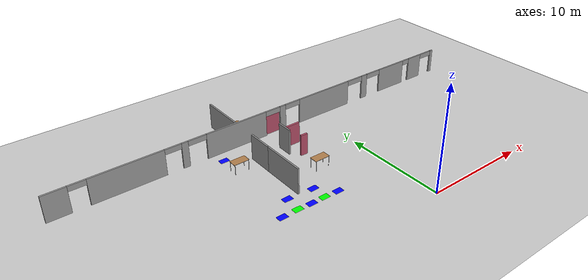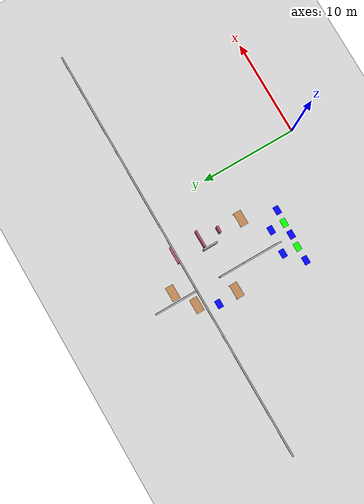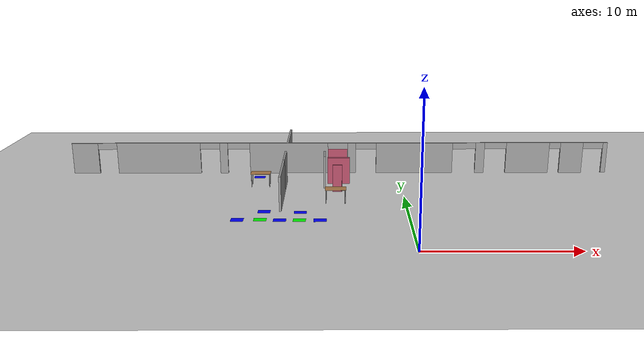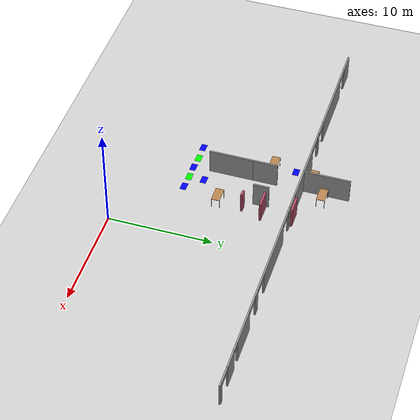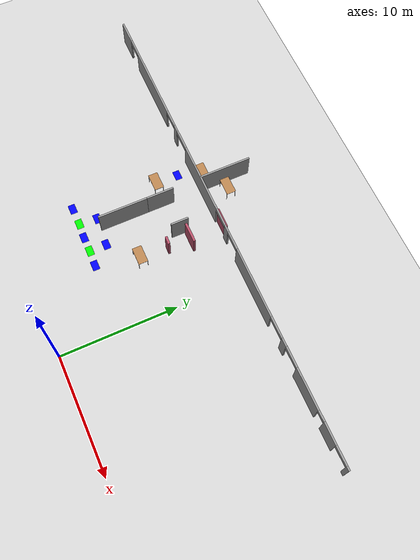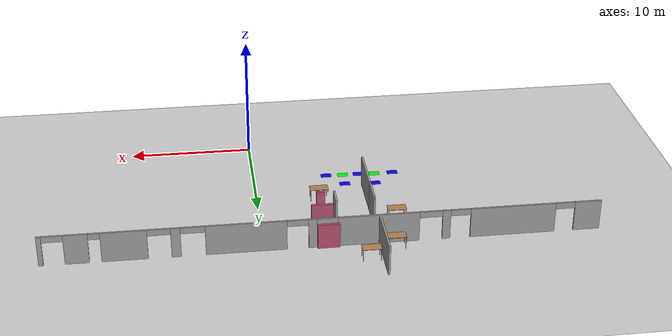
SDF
<sdf version="1.6">
 <world name="default">
  <model name="ground_plane">
   <pose>0 0 0.001 0 -0 0</pose>
   <static>1</static>
   <link name="link">
    <collision name="collision">
     <geometry><plane><normal>0 0 1</normal><size>100 100</size></plane></geometry>
     <surface><friction><ode><mu>100</mu><mu2>50</mu2></ode></friction></surface>
    </collision>
    <visual name="visual">
     <cast_shadows>0</cast_shadows>
     <geometry><plane><normal>0 0 1</normal><size>100 100</size></plane></geometry>
     <material>
      <script><uri>file://media/materials/scripts/gazebo.material</uri><name>Gazebo/Grey</name></script>
     </material>
    </visual>
   </link>
  </model>
  <model name="table_1">
   <static>1</static>
   <link name="link">
    <collision name="surface">
     <pose>0 0 1 0 -0 0</pose>
     <geometry><box><size>1.5 0.8 0.03</size></box></geometry>
     <surface><friction><ode><mu>0.6</mu><mu2>0.6</mu2></ode></friction></surface>
    </collision>
    <visual name="visual1">
     <pose>0 0 1 0 -0 0</pose>
     <geometry><box><size>1.5 0.8 0.03</size></box></geometry>
     <material>
      <script><uri>file://media/materials/scripts/gazebo.material</uri><name>Gazebo/Wood</name></script>
     </material>
    </visual>
    <collision name="front_left_leg">
     <pose>0.68 0.38 0.5 0 -0 0</pose>
     <geometry><cylinder><radius>0.02</radius><length>1</length></cylinder></geometry>
    </collision>
    <visual name="front_left_leg">
     <pose>0.68 0.38 0.5 0 -0 0</pose>
     <geometry><cylinder><radius>0.02</radius><length>1</length></cylinder></geometry>
     <material>
      <script><uri>file://media/materials/scripts/gazebo.material</uri><name>Gazebo/Grey</name></script>
     </material>
    </visual>
    <collision name="front_right_leg">
     <pose>0.68 -0.38 0.5 0 -0 0</pose>
     <geometry><cylinder><radius>0.02</radius><length>1</length></cylinder></geometry>
    </collision>
    <visual name="front_right_leg">
     <pose>0.68 -0.38 0.5 0 -0 0</pose>
     <geometry><cylinder><radius>0.02</radius><length>1</length></cylinder></geometry>
     <material>
      <script><uri>file://media/materials/scripts/gazebo.material</uri><name>Gazebo/Grey</name></script>
     </material>
    </visual>
    <collision name="back_right_leg">
     <pose>-0.68 -0.38 0.5 0 -0 0</pose>
     <geometry><cylinder><radius>0.02</radius><length>1</length></cylinder></geometry>
    </collision>
    <visual name="back_right_leg">
     <pose>-0.68 -0.38 0.5 0 -0 0</pose>
     <geometry><cylinder><radius>0.02</radius><length>1</length></cylinder></geometry>
     <material>
      <script><uri>file://media/materials/scripts/gazebo.material</uri><name>Gazebo/Grey</name></script>
     </material>
    </visual>
    <collision name="back_left_leg">
     <pose>-0.68 0.38 0.5 0 -0 0</pose>
     <geometry><cylinder><radius>0.02</radius><length>1</length></cylinder></geometry>
    </collision>
    <visual name="back_left_leg">
     <pose>-0.68 0.38 0.5 0 -0 0</pose>
     <geometry><cylinder><radius>0.02</radius><length>1</length></cylinder></geometry>
     <material>
      <script><uri>file://media/materials/scripts/gazebo.material</uri><name>Gazebo/Grey</name></script>
     </material>
    </visual>
   </link>
   <pose>-10.0366 16.6825 0.001 0 -0 0</pose>
  </model>
  <model name="table_3">
   <static>1</static>
   <link name="link">
    <collision name="surface">
     <pose>0 0 1 0 -0 0</pose>
     <geometry><box><size>1.5 0.8 0.03</size></box></geometry>
     <surface><friction><ode><mu>0.6</mu><mu2>0.6</mu2></ode></friction></surface>
    </collision>
    <visual name="visual1">
     <pose>0 0 1 0 -0 0</pose>
     <geometry><box><size>1.5 0.8 0.03</size></box></geometry>
     <material>
      <script><uri>file://media/materials/scripts/gazebo.material</uri><name>Gazebo/Wood</name></script>
     </material>
    </visual>
    <collision name="front_left_leg">
     <pose>0.68 0.38 0.5 0 -0 0</pose>
     <geometry><cylinder><radius>0.02</radius><length>1</length></cylinder></geometry>
    </collision>
    <visual name="front_left_leg">
     <pose>0.68 0.38 0.5 0 -0 0</pose>
     <geometry><cylinder><radius>0.02</radius><length>1</length></cylinder></geometry>
     <material>
      <script><uri>file://media/materials/scripts/gazebo.material</uri><name>Gazebo/Grey</name></script>
     </material>
    </visual>
    <collision name="front_right_leg">
     <pose>0.68 -0.38 0.5 0 -0 0</pose>
     <geometry><cylinder><radius>0.02</radius><length>1</length></cylinder></geometry>
    </collision>
    <visual name="front_right_leg">
     <pose>0.68 -0.38 0.5 0 -0 0</pose>
     <geometry><cylinder><radius>0.02</radius><length>1</length></cylinder></geometry>
     <material>
      <script><uri>file://media/materials/scripts/gazebo.material</uri><name>Gazebo/Grey</name></script>
     </material>
    </visual>
    <collision name="back_right_leg">
     <pose>-0.68 -0.38 0.5 0 -0 0</pose>
     <geometry><cylinder><radius>0.02</radius><length>1</length></cylinder></geometry>
    </collision>
    <visual name="back_right_leg">
     <pose>-0.68 -0.38 0.5 0 -0 0</pose>
     <geometry><cylinder><radius>0.02</radius><length>1</length></cylinder></geometry>
     <material>
      <script><uri>file://media/materials/scripts/gazebo.material</uri><name>Gazebo/Grey</name></script>
     </material>
    </visual>
    <collision name="back_left_leg">
     <pose>-0.68 0.38 0.5 0 -0 0</pose>
     <geometry><cylinder><radius>0.02</radius><length>1</length></cylinder></geometry>
    </collision>
    <visual name="back_left_leg">
     <pose>-0.68 0.38 0.5 0 -0 0</pose>
     <geometry><cylinder><radius>0.02</radius><length>1</length></cylinder></geometry>
     <material>
      <script><uri>file://media/materials/scripts/gazebo.material</uri><name>Gazebo/Grey</name></script>
     </material>
    </visual>
   </link>
   <pose>-10.736 12.6995 0.001 0 -0 0</pose>
  </model>
  <model name="table_4">
   <static>1</static>
   <link name="link">
    <collision name="surface">
     <pose>0 0 1 0 -0 0</pose>
     <geometry><box><size>1.5 0.8 0.03</size></box></geometry>
     <surface><friction><ode><mu>0.6</mu><mu2>0.6</mu2></ode></friction></surface>
    </collision>
    <visual name="visual1">
     <pose>0 0 1 0 -0 0</pose>
     <geometry><box><size>1.5 0.8 0.03</size></box></geometry>
     <material>
      <script><uri>file://media/materials/scripts/gazebo.material</uri><name>Gazebo/Wood</name></script>
     </material>
    </visual>
    <collision name="front_left_leg">
     <pose>0.68 0.38 0.5 0 -0 0</pose>
     <geometry><cylinder><radius>0.02</radius><length>1</length></cylinder></geometry>
    </collision>
    <visual name="front_left_leg">
     <pose>0.68 0.38 0.5 0 -0 0</pose>
     <geometry><cylinder><radius>0.02</radius><length>1</length></cylinder></geometry>
     <material>
      <script><uri>file://media/materials/scripts/gazebo.material</uri><name>Gazebo/Grey</name></script>
     </material>
    </visual>
    <collision name="front_right_leg">
     <pose>0.68 -0.38 0.5 0 -0 0</pose>
     <geometry><cylinder><radius>0.02</radius><length>1</length></cylinder></geometry>
    </collision>
    <visual name="front_right_leg">
     <pose>0.68 -0.38 0.5 0 -0 0</pose>
     <geometry><cylinder><radius>0.02</radius><length>1</length></cylinder></geometry>
     <material>
      <script><uri>file://media/materials/scripts/gazebo.material</uri><name>Gazebo/Grey</name></script>
     </material>
    </visual>
    <collision name="back_right_leg">
     <pose>-0.68 -0.38 0.5 0 -0 0</pose>
     <geometry><cylinder><radius>0.02</radius><length>1</length></cylinder></geometry>
    </collision>
    <visual name="back_right_leg">
     <pose>-0.68 -0.38 0.5 0 -0 0</pose>
     <geometry><cylinder><radius>0.02</radius><length>1</length></cylinder></geometry>
     <material>
      <script><uri>file://media/materials/scripts/gazebo.material</uri><name>Gazebo/Grey</name></script>
     </material>
    </visual>
    <collision name="back_left_leg">
     <pose>-0.68 0.38 0.5 0 -0 0</pose>
     <geometry><cylinder><radius>0.02</radius><length>1</length></cylinder></geometry>
    </collision>
    <visual name="back_left_leg">
     <pose>-0.68 0.38 0.5 0 -0 0</pose>
     <geometry><cylinder><radius>0.02</radius><length>1</length></cylinder></geometry>
     <material>
      <script><uri>file://media/materials/scripts/gazebo.material</uri><name>Gazebo/Grey</name></script>
     </material>
    </visual>
   </link>
   <pose>-5.01771 8.89432 0.001 0 -0 0</pose>
  </model>
  <model name="table_5">
   <static>1</static>
   <link name="link">
    <collision name="surface">
     <pose>0 0 1 0 -0 0</pose>
     <geometry><box><size>1.5 0.8 0.03</size></box></geometry>
     <surface><friction><ode><mu>0.6</mu><mu2>0.6</mu2></ode></friction></surface>
    </collision>
    <visual name="visual1">
     <pose>0 0 1 0 -0 0</pose>
     <geometry><box><size>1.5 0.8 0.03</size></box></geometry>
     <material>
      <script><uri>file://media/materials/scripts/gazebo.material</uri><name>Gazebo/Wood</name></script>
     </material>
    </visual>
    <collision name="front_left_leg">
     <pose>0.68 0.38 0.5 0 -0 0</pose>
     <geometry><cylinder><radius>0.02</radius><length>1</length></cylinder></geometry>
    </collision>
    <visual name="front_left_leg">
     <pose>0.68 0.38 0.5 0 -0 0</pose>
     <geometry><cylinder><radius>0.02</radius><length>1</length></cylinder></geometry>
     <material>
      <script><uri>file://media/materials/scripts/gazebo.material</uri><name>Gazebo/Grey</name></script>
     </material>
    </visual>
    <collision name="front_right_leg">
     <pose>0.68 -0.38 0.5 0 -0 0</pose>
     <geometry><cylinder><radius>0.02</radius><length>1</length></cylinder></geometry>
    </collision>
    <visual name="front_right_leg">
     <pose>0.68 -0.38 0.5 0 -0 0</pose>
     <geometry><cylinder><radius>0.02</radius><length>1</length></cylinder></geometry>
     <material>
      <script><uri>file://media/materials/scripts/gazebo.material</uri><name>Gazebo/Grey</name></script>
     </material>
    </visual>
    <collision name="back_right_leg">
     <pose>-0.68 -0.38 0.5 0 -0 0</pose>
     <geometry><cylinder><radius>0.02</radius><length>1</length></cylinder></geometry>
    </collision>
    <visual name="back_right_leg">
     <pose>-0.68 -0.38 0.5 0 -0 0</pose>
     <geometry><cylinder><radius>0.02</radius><length>1</length></cylinder></geometry>
     <material>
      <script><uri>file://media/materials/scripts/gazebo.material</uri><name>Gazebo/Grey</name></script>
     </material>
    </visual>
    <collision name="back_left_leg">
     <pose>-0.68 0.38 0.5 0 -0 0</pose>
     <geometry><cylinder><radius>0.02</radius><length>1</length></cylinder></geometry>
    </collision>
    <visual name="back_left_leg">
     <pose>-0.68 0.38 0.5 0 -0 0</pose>
     <geometry><cylinder><radius>0.02</radius><length>1</length></cylinder></geometry>
     <material>
      <script><uri>file://media/materials/scripts/gazebo.material</uri><name>Gazebo/Grey</name></script>
     </material>
    </visual>
   </link>
   <pose>-7.90698 18.0796 0.001 0 -0 0</pose>
  </model>
  <model name="doorInside_10">
   <link name="link">
    <pose>0.712274 -0.220649 0.216958 0 -0 0</pose>
    <inertial>
     <mass>0.840612</mass>
     <inertia>
      <ixx>0.178476</ixx>
      <ixy>0</ixy>
      <ixz>0</ixz>
      <iyy>0.140406</iyy>
      <iyz>0</iyz>
      <izz>0.102032</izz>
     </inertia>
     <pose>0 0 0.001 0 -0 0</pose>
    </inertial>
    <visual name="visual">
     <geometry><box><size>0.675678 0.198843 2.05986</size></box></geometry>
     <material>
      <script><name>Gazebo/Grey</name><uri>file://media/materials/scripts/gazebo.material</uri></script>
      <ambient>0.7 0.3 0.4 1</ambient>
      <diffuse>0.7 0.7 0.7 1</diffuse>
      <specular>0.01 0.01 0.01 1</specular>
      <emissive>1 0 0 1</emissive>
      <shader type="vertex"><normal_map>__default__</normal_map></shader>
      <lighting>0</lighting>
     </material>
     <pose>0 0 0.001 0 -0 0</pose>
    </visual>
    <collision name="collision">
     <pose>0 0 0.001 0 -0 0</pose>
     <geometry><box><size>0.675678 0.198843 2.05986</size></box></geometry>
     <surface>
      <friction>
       <ode><mu>1</mu><mu2>1</mu2><fdir1>0 0 0</fdir1><slip1>0</slip1><slip2>0</slip2></ode>
       <torsional>
        <coefficient>1</coefficient>
        <patch_radius>0</patch_radius>
        <surface_radius>0</surface_radius>
        <use_patch_radius>1</use_patch_radius>
        <ode><slip>0</slip></ode>
       </torsional>
      </friction>
      <bounce><restitution_coefficient>0</restitution_coefficient><threshold>1e+06</threshold></bounce>
      <contact>
       <collide_without_contact>0</collide_without_contact>
       <collide_without_contact_bitmask>1</collide_without_contact_bitmask>
       <collide_bitmask>1</collide_bitmask>
       <ode>
        <soft_cfm>0</soft_cfm>
        <soft_erp>0.2</soft_erp>
        <kp>1e+13</kp>
        <kd>1</kd>
        <max_vel>0.01</max_vel>
        <min_depth>0</min_depth>
       </ode>
       <bullet>
        <split_impulse>1</split_impulse>
        <split_impulse_penetration_threshold>-0.01</split_impulse_penetration_threshold>
        <soft_cfm>0</soft_cfm>
        <soft_erp>0.2</soft_erp>
        <kp>1e+13</kp>
        <kd>1</kd>
       </bullet>
      </contact>
     </surface>
    </collision>
   </link>
   <static>0</static>
   <pose>-5.58873 11.5494 0.811972 0 0 -0.036385</pose>
  </model>
  <model name="corridor_16">
   <link name="link">
    <pose>0 0 0.001 0 -0 0</pose>
    <inertial>
     <mass>0.0352517</mass>
     <inertia>
      <ixx>0.00099707</ixx>
      <ixy>0</ixy>
      <ixz>0</ixz>
      <iyy>0.00220147</iyy>
      <iyz>0</iyz>
      <izz>0.0031692</izz>
     </inertia>
     <pose>0 0 0.001 0 -0 0</pose>
    </inertial>
    <visual name="visual">
     <geometry><box><size>0.862743 0.578289 1e-06</size></box></geometry>
     <material>
      <script><name>Gazebo/Grey</name><uri>file://media/materials/scripts/gazebo.material</uri></script>
      <ambient>0 1 0 1</ambient>
      <diffuse>0 1 0 1</diffuse>
      <specular>0 1 0 1</specular>
      <emissive>0 1 0 1</emissive>
      <shader type="vertex"><normal_map>__default__</normal_map></shader>
     </material>
     <pose>0 0 0.001 0 -0 0</pose>
    </visual>
    <collision name="collision">
     <pose>0 0 0.001 0 -0 0</pose>
     <geometry><box><size>0.862743 0.578289 0.000477</size></box></geometry>
     <surface>
      <friction>
       <ode><mu>1</mu><mu2>1</mu2><fdir1>0 0 0</fdir1><slip1>0</slip1><slip2>0</slip2></ode>
       <torsional>
        <coefficient>1</coefficient>
        <patch_radius>0</patch_radius>
        <surface_radius>0</surface_radius>
        <use_patch_radius>1</use_patch_radius>
        <ode><slip>0</slip></ode>
       </torsional>
      </friction>
      <bounce><restitution_coefficient>0</restitution_coefficient><threshold>1e+06</threshold></bounce>
      <contact>
       <collide_without_contact>0</collide_without_contact>
       <collide_without_contact_bitmask>1</collide_without_contact_bitmask>
       <collide_bitmask>1</collide_bitmask>
       <ode>
        <soft_cfm>0</soft_cfm>
        <soft_erp>0.2</soft_erp>
        <kp>1e+13</kp>
        <kd>1</kd>
        <max_vel>0.01</max_vel>
        <min_depth>0</min_depth>
       </ode>
       <bullet>
        <split_impulse>1</split_impulse>
        <split_impulse_penetration_threshold>-0.01</split_impulse_penetration_threshold>
        <soft_cfm>0</soft_cfm>
        <soft_erp>0.2</soft_erp>
        <kp>1e+13</kp>
        <kd>1</kd>
       </bullet>
      </contact>
     </surface>
    </collision>
   </link>
   <static>1</static>
   <pose>-7.44314 5.32852 0 0 -0 0</pose>
  </model>
  <model name="intersection_26">
   <link name="link">
    <pose>0 0 0.001 0 -0 0</pose>
    <inertial>
     <mass>0.0352517</mass>
     <inertia>
      <ixx>0.000997067</ixx>
      <ixy>0</ixy>
      <ixz>0</ixz>
      <iyy>0.00220147</iyy>
      <iyz>0</iyz>
      <izz>0.0031692</izz>
     </inertia>
     <pose>0 0 0.001 0 -0 0</pose>
    </inertial>
    <visual name="visual">
     <geometry><box><size>0.862743 0.578289 1e-06</size></box></geometry>
     <material>
      <script><name>Gazebo/Grey</name><uri>file://media/materials/scripts/gazebo.material</uri></script>
      <ambient>0 0 1 1</ambient>
      <diffuse>0 0 1 1</diffuse>
      <specular>0 0 1 1</specular>
      <emissive>0 0 1 1</emissive>
      <shader type="vertex"><normal_map>__default__</normal_map></shader>
     </material>
     <pose>0 0 0.001 0 -0 0</pose>
    </visual>
    <collision name="collision">
     <pose>0 0 0.001 0 -0 0</pose>
     <geometry><box><size>0.862743 0.578289 0.000477</size></box></geometry>
     <surface>
      <friction>
       <ode><mu>1</mu><mu2>1</mu2><fdir1>0 0 0</fdir1><slip1>0</slip1><slip2>0</slip2></ode>
       <torsional>
        <coefficient>1</coefficient>
        <patch_radius>0</patch_radius>
        <surface_radius>0</surface_radius>
        <use_patch_radius>1</use_patch_radius>
        <ode><slip>0</slip></ode>
       </torsional>
      </friction>
      <bounce><restitution_coefficient>0</restitution_coefficient><threshold>1e+06</threshold></bounce>
      <contact>
       <collide_without_contact>0</collide_without_contact>
       <collide_without_contact_bitmask>1</collide_without_contact_bitmask>
       <collide_bitmask>1</collide_bitmask>
       <ode>
        <soft_cfm>0</soft_cfm>
        <soft_erp>0.2</soft_erp>
        <kp>1e+13</kp>
        <kd>1</kd>
        <max_vel>0.01</max_vel>
        <min_depth>0</min_depth>
       </ode>
       <bullet>
        <split_impulse>1</split_impulse>
        <split_impulse_penetration_threshold>-0.01</split_impulse_penetration_threshold>
        <soft_cfm>0</soft_cfm>
        <soft_erp>0.2</soft_erp>
        <kp>1e+13</kp>
        <kd>1</kd>
       </bullet>
      </contact>
     </surface>
    </collision>
   </link>
   <static>1</static>
   <pose>-7.44042 6.78439 0 0 -0 0</pose>
  </model>
  <model name="corridor_17">
   <link name="link">
    <pose>0 0 0.001 0 -0 0</pose>
    <inertial>
     <mass>0.0352517</mass>
     <inertia>
      <ixx>0.00099707</ixx>
      <ixy>0</ixy>
      <ixz>0</ixz>
      <iyy>0.00220147</iyy>
      <iyz>0</iyz>
      <izz>0.0031692</izz>
     </inertia>
     <pose>0 0 0.001 0 -0 0</pose>
    </inertial>
    <visual name="visual">
     <geometry><box><size>0.862743 0.578289 1e-06</size></box></geometry>
     <material>
      <script><name>Gazebo/Grey</name><uri>file://media/materials/scripts/gazebo.material</uri></script>
      <ambient>0 1 0 1</ambient>
      <diffuse>0 1 0 1</diffuse>
      <specular>0 1 0 1</specular>
      <emissive>0 1 0 1</emissive>
      <shader type="vertex"><normal_map>__default__</normal_map></shader>
     </material>
     <pose>0 0 0.001 0 -0 0</pose>
    </visual>
    <collision name="collision">
     <pose>0 0 0.001 0 -0 0</pose>
     <geometry><box><size>0.862743 0.578289 0.000477</size></box></geometry>
     <surface>
      <friction>
       <ode><mu>1</mu><mu2>1</mu2><fdir1>0 0 0</fdir1><slip1>0</slip1><slip2>0</slip2></ode>
       <torsional>
        <coefficient>1</coefficient>
        <patch_radius>0</patch_radius>
        <surface_radius>0</surface_radius>
        <use_patch_radius>1</use_patch_radius>
        <ode><slip>0</slip></ode>
       </torsional>
      </friction>
      <bounce><restitution_coefficient>0</restitution_coefficient><threshold>1e+06</threshold></bounce>
      <contact>
       <collide_without_contact>0</collide_without_contact>
       <collide_without_contact_bitmask>1</collide_without_contact_bitmask>
       <collide_bitmask>1</collide_bitmask>
       <ode>
        <soft_cfm>0</soft_cfm>
        <soft_erp>0.2</soft_erp>
        <kp>1e+13</kp>
        <kd>1</kd>
        <max_vel>0.01</max_vel>
        <min_depth>0</min_depth>
       </ode>
       <bullet>
        <split_impulse>1</split_impulse>
        <split_impulse_penetration_threshold>-0.01</split_impulse_penetration_threshold>
        <soft_cfm>0</soft_cfm>
        <soft_erp>0.2</soft_erp>
        <kp>1e+13</kp>
        <kd>1</kd>
       </bullet>
      </contact>
     </surface>
    </collision>
   </link>
   <static>1</static>
   <pose>-10.0982 5.39888 0 0 -0 0</pose>
  </model>
  <model name="intersection_27">
   <link name="link">
    <pose>0 0 0.001 0 -0 0</pose>
    <inertial>
     <mass>0.0352517</mass>
     <inertia>
      <ixx>0.000997067</ixx>
      <ixy>0</ixy>
      <ixz>0</ixz>
      <iyy>0.00220147</iyy>
      <iyz>0</iyz>
      <izz>0.0031692</izz>
     </inertia>
     <pose>0 0 0.001 0 -0 0</pose>
    </inertial>
    <visual name="visual">
     <geometry><box><size>0.862743 0.578289 1e-06</size></box></geometry>
     <material>
      <script><name>Gazebo/Grey</name><uri>file://media/materials/scripts/gazebo.material</uri></script>
      <ambient>0 0 1 1</ambient>
      <diffuse>0 0 1 1</diffuse>
      <specular>0 0 1 1</specular>
      <emissive>0 0 1 1</emissive>
      <shader type="vertex"><normal_map>__default__</normal_map></shader>
     </material>
     <pose>0 0 0.001 0 -0 0</pose>
    </visual>
    <collision name="collision">
     <pose>0 0 0.001 0 -0 0</pose>
     <geometry><box><size>0.862743 0.578289 0.000477</size></box></geometry>
     <surface>
      <friction>
       <ode><mu>1</mu><mu2>1</mu2><fdir1>0 0 0</fdir1><slip1>0</slip1><slip2>0</slip2></ode>
       <torsional>
        <coefficient>1</coefficient>
        <patch_radius>0</patch_radius>
        <surface_radius>0</surface_radius>
        <use_patch_radius>1</use_patch_radius>
        <ode><slip>0</slip></ode>
       </torsional>
      </friction>
      <bounce><restitution_coefficient>0</restitution_coefficient><threshold>1e+06</threshold></bounce>
      <contact>
       <collide_without_contact>0</collide_without_contact>
       <collide_without_contact_bitmask>1</collide_without_contact_bitmask>
       <collide_bitmask>1</collide_bitmask>
       <ode>
        <soft_cfm>0</soft_cfm>
        <soft_erp>0.2</soft_erp>
        <kp>1e+13</kp>
        <kd>1</kd>
        <max_vel>0.01</max_vel>
        <min_depth>0</min_depth>
       </ode>
       <bullet>
        <split_impulse>1</split_impulse>
        <split_impulse_penetration_threshold>-0.01</split_impulse_penetration_threshold>
        <soft_cfm>0</soft_cfm>
        <soft_erp>0.2</soft_erp>
        <kp>1e+13</kp>
        <kd>1</kd>
       </bullet>
      </contact>
     </surface>
    </collision>
   </link>
   <static>1</static>
   <pose>-9.96291 6.95576 0 0 -0 0</pose>
  </model>
  <model name="intersection_43">
   <link name="link">
    <pose>0 0 0.001 0 -0 0</pose>
    <inertial>
     <mass>0.0352517</mass>
     <inertia>
      <ixx>0.000997067</ixx>
      <ixy>0</ixy>
      <ixz>0</ixz>
      <iyy>0.00220147</iyy>
      <iyz>0</iyz>
      <izz>0.0031692</izz>
     </inertia>
     <pose>0 0 0.001 0 -0 0</pose>
    </inertial>
    <visual name="visual">
     <geometry><box><size>0.862743 0.578289 1e-06</size></box></geometry>
     <material>
      <script><name>Gazebo/Grey</name><uri>file://media/materials/scripts/gazebo.material</uri></script>
      <ambient>0 0 1 1</ambient>
      <diffuse>0 0 1 1</diffuse>
      <specular>0 0 1 1</specular>
      <emissive>0 0 1 1</emissive>
      <shader type="vertex"><normal_map>__default__</normal_map></shader>
     </material>
     <pose>0 0 0.001 0 -0 0</pose>
    </visual>
    <collision name="collision">
     <pose>0 0 0.001 0 -0 0</pose>
     <geometry><box><size>0.862743 0.578289 0.000477</size></box></geometry>
     <surface>
      <friction>
       <ode><mu>1</mu><mu2>1</mu2><fdir1>0 0 0</fdir1><slip1>0</slip1><slip2>0</slip2></ode>
       <torsional>
        <coefficient>1</coefficient>
        <patch_radius>0</patch_radius>
        <surface_radius>0</surface_radius>
        <use_patch_radius>1</use_patch_radius>
        <ode><slip>0</slip></ode>
       </torsional>
      </friction>
      <bounce><restitution_coefficient>0</restitution_coefficient><threshold>1e+06</threshold></bounce>
      <contact>
       <collide_without_contact>0</collide_without_contact>
       <collide_without_contact_bitmask>1</collide_without_contact_bitmask>
       <collide_bitmask>1</collide_bitmask>
       <ode>
        <soft_cfm>0</soft_cfm>
        <soft_erp>0.2</soft_erp>
        <kp>1e+13</kp>
        <kd>1</kd>
        <max_vel>0.01</max_vel>
        <min_depth>0</min_depth>
       </ode>
       <bullet>
        <split_impulse>1</split_impulse>
        <split_impulse_penetration_threshold>-0.01</split_impulse_penetration_threshold>
        <soft_cfm>0</soft_cfm>
        <soft_erp>0.2</soft_erp>
        <kp>1e+13</kp>
        <kd>1</kd>
       </bullet>
      </contact>
     </surface>
    </collision>
   </link>
   <static>1</static>
   <pose>-11.6322 5.37303 0 0 -0 0</pose>
  </model>
  <model name="intersection_44">
   <link name="link">
    <pose>0 0 0.001 0 -0 0</pose>
    <inertial>
     <mass>0.0352517</mass>
     <inertia>
      <ixx>0.000997067</ixx>
      <ixy>0</ixy>
      <ixz>0</ixz>
      <iyy>0.00220147</iyy>
      <iyz>0</iyz>
      <izz>0.0031692</izz>
     </inertia>
     <pose>0 0 0.001 0 -0 0</pose>
    </inertial>
    <visual name="visual">
     <geometry><box><size>0.862743 0.578289 1e-06</size></box></geometry>
     <material>
      <script><name>Gazebo/Grey</name><uri>file://media/materials/scripts/gazebo.material</uri></script>
      <ambient>0 0 1 1</ambient>
      <diffuse>0 0 1 1</diffuse>
      <specular>0 0 1 1</specular>
      <emissive>0 0 1 1</emissive>
      <shader type="vertex"><normal_map>__default__</normal_map></shader>
     </material>
     <pose>0 0 0.001 0 -0 0</pose>
    </visual>
    <collision name="collision">
     <pose>0 0 0.001 0 -0 0</pose>
     <geometry><box><size>0.862743 0.578289 0.000477</size></box></geometry>
     <surface>
      <friction>
       <ode><mu>1</mu><mu2>1</mu2><fdir1>0 0 0</fdir1><slip1>0</slip1><slip2>0</slip2></ode>
       <torsional>
        <coefficient>1</coefficient>
        <patch_radius>0</patch_radius>
        <surface_radius>0</surface_radius>
        <use_patch_radius>1</use_patch_radius>
        <ode><slip>0</slip></ode>
       </torsional>
      </friction>
      <bounce><restitution_coefficient>0</restitution_coefficient><threshold>1e+06</threshold></bounce>
      <contact>
       <collide_without_contact>0</collide_without_contact>
       <collide_without_contact_bitmask>1</collide_without_contact_bitmask>
       <collide_bitmask>1</collide_bitmask>
       <ode>
        <soft_cfm>0</soft_cfm>
        <soft_erp>0.2</soft_erp>
        <kp>1e+13</kp>
        <kd>1</kd>
        <max_vel>0.01</max_vel>
        <min_depth>0</min_depth>
       </ode>
       <bullet>
        <split_impulse>1</split_impulse>
        <split_impulse_penetration_threshold>-0.01</split_impulse_penetration_threshold>
        <soft_cfm>0</soft_cfm>
        <soft_erp>0.2</soft_erp>
        <kp>1e+13</kp>
        <kd>1</kd>
       </bullet>
      </contact>
     </surface>
    </collision>
   </link>
   <static>1</static>
   <pose>-8.76868 5.3199 0 0 -0 0</pose>
  </model>
  <model name="intersection">
   <link name="link">
    <pose>0 0 0.001 0 -0 0</pose>
    <inertial>
     <mass>0.0352517</mass>
     <inertia>
      <ixx>0.000997067</ixx>
      <ixy>0</ixy>
      <ixz>0</ixz>
      <iyy>0.00220147</iyy>
      <iyz>0</iyz>
      <izz>0.0031692</izz>
     </inertia>
     <pose>0 0 0.001 0 -0 0</pose>
    </inertial>
    <visual name="visual">
     <geometry><box><size>0.862743 0.578289 1e-06</size></box></geometry>
     <material>
      <script><name>Gazebo/Grey</name><uri>file://media/materials/scripts/gazebo.material</uri></script>
      <ambient>0 0 1 1</ambient>
      <diffuse>0 0 1 1</diffuse>
      <specular>0 0 1 1</specular>
      <emissive>0 0 1 1</emissive>
      <shader type="vertex"><normal_map>__default__</normal_map></shader>
     </material>
     <pose>0 0 0.001 0 -0 0</pose>
    </visual>
    <collision name="collision">
     <pose>0 0 0.001 0 -0 0</pose>
     <geometry><box><size>0.862743 0.578289 0.000477</size></box></geometry>
     <surface>
      <friction>
       <ode><mu>1</mu><mu2>1</mu2><fdir1>0 0 0</fdir1><slip1>0</slip1><slip2>0</slip2></ode>
       <torsional>
        <coefficient>1</coefficient>
        <patch_radius>0</patch_radius>
        <surface_radius>0</surface_radius>
        <use_patch_radius>1</use_patch_radius>
        <ode><slip>0</slip></ode>
       </torsional>
      </friction>
      <bounce><restitution_coefficient>0</restitution_coefficient><threshold>1e+06</threshold></bounce>
      <contact>
       <collide_without_contact>0</collide_without_contact>
       <collide_without_contact_bitmask>1</collide_without_contact_bitmask>
       <collide_bitmask>1</collide_bitmask>
       <ode>
        <soft_cfm>0</soft_cfm>
        <soft_erp>0.2</soft_erp>
        <kp>1e+13</kp>
        <kd>1</kd>
        <max_vel>0.01</max_vel>
        <min_depth>0</min_depth>
       </ode>
       <bullet>
        <split_impulse>1</split_impulse>
        <split_impulse_penetration_threshold>-0.01</split_impulse_penetration_threshold>
        <soft_cfm>0</soft_cfm>
        <soft_erp>0.2</soft_erp>
        <kp>1e+13</kp>
        <kd>1</kd>
       </bullet>
      </contact>
     </surface>
    </collision>
   </link>
   <static>1</static>
   <pose>-6.05755 5.26757 0 0 -0 0</pose>
  </model>
  <model name="intersection_4">
   <link name="link">
    <pose>0 0 0.001 0 -0 0</pose>
    <inertial>
     <mass>0.0352517</mass>
     <inertia>
      <ixx>0.000997067</ixx>
      <ixy>0</ixy>
      <ixz>0</ixz>
      <iyy>0.00220147</iyy>
      <iyz>0</iyz>
      <izz>0.0031692</izz>
     </inertia>
     <pose>0 0 0.001 0 -0 0</pose>
    </inertial>
    <visual name="visual">
     <geometry><box><size>0.862743 0.578289 1e-06</size></box></geometry>
     <material>
      <script><name>Gazebo/Grey</name><uri>file://media/materials/scripts/gazebo.material</uri></script>
      <ambient>0 0 1 1</ambient>
      <diffuse>0 0 1 1</diffuse>
      <specular>0 0 1 1</specular>
      <emissive>0 0 1 1</emissive>
      <shader type="vertex"><normal_map>__default__</normal_map></shader>
     </material>
     <pose>0 0 0.001 0 -0 0</pose>
    </visual>
    <collision name="collision">
     <pose>0 0 0.001 0 -0 0</pose>
     <geometry><box><size>0.862743 0.578289 0.000477</size></box></geometry>
     <surface>
      <friction>
       <ode><mu>1</mu><mu2>1</mu2><fdir1>0 0 0</fdir1><slip1>0</slip1><slip2>0</slip2></ode>
       <torsional>
        <coefficient>1</coefficient>
        <patch_radius>0</patch_radius>
        <surface_radius>0</surface_radius>
        <use_patch_radius>1</use_patch_radius>
        <ode><slip>0</slip></ode>
       </torsional>
      </friction>
      <bounce><restitution_coefficient>0</restitution_coefficient><threshold>1e+06</threshold></bounce>
      <contact>
       <collide_without_contact>0</collide_without_contact>
       <collide_without_contact_bitmask>1</collide_without_contact_bitmask>
       <collide_bitmask>1</collide_bitmask>
       <ode>
        <soft_cfm>0</soft_cfm>
        <soft_erp>0.2</soft_erp>
        <kp>1e+13</kp>
        <kd>1</kd>
        <max_vel>0.01</max_vel>
        <min_depth>0</min_depth>
       </ode>
       <bullet>
        <split_impulse>1</split_impulse>
        <split_impulse_penetration_threshold>-0.01</split_impulse_penetration_threshold>
        <soft_cfm>0</soft_cfm>
        <soft_erp>0.2</soft_erp>
        <kp>1e+13</kp>
        <kd>1</kd>
       </bullet>
      </contact>
     </surface>
    </collision>
   </link>
   <static>1</static>
   <pose>-11.0394 14.7716 0 0 -0 0</pose>
  </model>
  <model name="doorOutside_10">
   <link name="link">
    <pose>0.155539 -0.366282 0.216958 0 -0 0</pose>
    <inertial>
     <mass>2.13199</mass>
     <inertia>
      <ixx>0.452656</ixx>
      <ixy>0</ixy>
      <ixz>0</ixz>
      <iyy>0.796738</iyy>
      <iyz>0</iyz>
      <izz>0.699414</izz>
     </inertia>
    </inertial>
    <visual name="visual">
     <geometry><box><size>1.71368 0.198843 2.05986</size></box></geometry>
     <material>
      <script><name>Gazebo/Grey</name><uri>file://media/materials/scripts/gazebo.material</uri></script>
      <ambient>0.7 0.3 0.4 1</ambient>
      <diffuse>0.7 0.7 0.7 1</diffuse>
      <specular>0.01 0.01 0.01 1</specular>
      <emissive>0 0 0 1</emissive>
      <shader type="vertex"><normal_map>__default__</normal_map></shader>
      <lighting>0</lighting>
     </material>
    </visual>
    <collision name="collision">
     <geometry><box><size>1.71368 0.198843 2.05986</size></box></geometry>
     <surface>
      <friction>
       <ode><mu>1</mu><mu2>1</mu2><fdir1>0 0 0</fdir1><slip1>0</slip1><slip2>0</slip2></ode>
       <torsional>
        <coefficient>1</coefficient>
        <patch_radius>0</patch_radius>
        <surface_radius>0</surface_radius>
        <use_patch_radius>1</use_patch_radius>
        <ode><slip>0</slip></ode>
       </torsional>
      </friction>
      <bounce><restitution_coefficient>0</restitution_coefficient><threshold>1e+06</threshold></bounce>
      <contact>
       <collide_without_contact>0</collide_without_contact>
       <collide_without_contact_bitmask>1</collide_without_contact_bitmask>
       <collide_bitmask>1</collide_bitmask>
       <ode>
        <soft_cfm>0</soft_cfm>
        <soft_erp>0.2</soft_erp>
        <kp>1e+13</kp>
        <kd>1</kd>
        <max_vel>0.01</max_vel>
        <min_depth>0</min_depth>
       </ode>
       <bullet>
        <split_impulse>1</split_impulse>
        <split_impulse_penetration_threshold>-0.01</split_impulse_penetration_threshold>
        <soft_cfm>0</soft_cfm>
        <soft_erp>0.2</soft_erp>
        <kp>1e+13</kp>
        <kd>1</kd>
       </bullet>
      </contact>
     </surface>
    </collision>
   </link>
   <static>0</static>
   <pose>-5.08297 16.5321 0.812972 0 1e-06 7.5e-05</pose>
  </model>
  <model name="Se1_cut">
   <pose>3.62364 13.9276 0 0 -0 0</pose>
   <link name="Wall_29">
    <collision name="Wall_29_Collision">
     <geometry><box><size>2.5 0.15 2.5</size></box></geometry>
     <pose>0 0 1.25 0 -0 0</pose>
    </collision>
    <visual name="Wall_29_Visual">
     <pose>0 0 1.25 0 -0 0</pose>
     <geometry><box><size>2.5 0.15 2.5</size></box></geometry>
     <material>
      <script><uri>file://media/materials/scripts/gazebo.material</uri><name>Gazebo/Grey</name></script>
      <ambient>1 1 1 1</ambient>
     </material>
    </visual>
    <pose>-12.471 -1.66352 0 0 0 -1.5708</pose>
   </link>
   <link name="Wall_31">
    <collision name="Wall_31_Collision">
     <geometry><box><size>1.5 0.15 2.5</size></box></geometry>
     <pose>0 0 1.25 0 -0 0</pose>
    </collision>
    <visual name="Wall_31_Visual">
     <pose>0 0 1.25 0 -0 0</pose>
     <geometry><box><size>1.5 0.15 2.5</size></box></geometry>
     <material>
      <script><uri>file://media/materials/scripts/gazebo.material</uri><name>Gazebo/Grey</name></script>
      <ambient>1 1 1 1</ambient>
     </material>
    </visual>
    <pose>-9.481 -1.13352 0 0 0 -1.5708</pose>
   </link>
   <link name="Wall_46">
    <pose>-8.2779 2.06374 0 0 -0 0</pose>
    <visual name="Wall_46_Visual_0">
     <pose>-20.462 0 1.25 0 -0 0</pose>
     <geometry><box><size>2.07596 0.15 2.5</size></box></geometry>
     <material>
      <script><uri>file://media/materials/scripts/gazebo.material</uri><name>Gazebo/Grey</name></script>
      <ambient>1 1 1 1</ambient>
     </material>
    </visual>
    <collision name="Wall_46_Collision_0">
     <geometry><box><size>2.07596 0.15 2.5</size></box></geometry>
     <pose>-20.462 0 1.25 0 -0 0</pose>
    </collision>
    <visual name="Wall_46_Visual_1">
     <pose>-14.5766 0 1.25 0 -0 0</pose>
     <geometry><box><size>6.67122 0.15 2.5</size></box></geometry>
     <material>
      <script><uri>file://media/materials/scripts/gazebo.material</uri><name>Gazebo/Grey</name></script>
      <ambient>1 1 1 1</ambient>
     </material>
    </visual>
    <collision name="Wall_46_Collision_1">
     <geometry><box><size>6.67122 0.15 2.5</size></box></geometry>
     <pose>-14.5766 0 1.25 0 -0 0</pose>
    </collision>
    <visual name="Wall_46_Visual_2">
     <pose>-9.36125 0 1.25 0 -0 0</pose>
     <geometry><box><size>0.629513 0.15 2.5</size></box></geometry>
     <material>
      <script><uri>file://media/materials/scripts/gazebo.material</uri><name>Gazebo/Grey</name></script>
      <ambient>1 1 1 1</ambient>
     </material>
    </visual>
    <collision name="Wall_46_Collision_2">
     <geometry><box><size>0.629513 0.15 2.5</size></box></geometry>
     <pose>-9.36125 0 1.25 0 -0 0</pose>
    </collision>
    <visual name="Wall_46_Visual_3">
     <pose>-4.12766 0 1.25 0 -0 0</pose>
     <geometry><box><size>6.28205 0.15 2.5</size></box></geometry>
     <material>
      <script><uri>file://media/materials/scripts/gazebo.material</uri><name>Gazebo/Grey</name></script>
      <ambient>1 1 1 1</ambient>
     </material>
    </visual>
    <collision name="Wall_46_Collision_3">
     <geometry><box><size>6.28205 0.15 2.5</size></box></geometry>
     <pose>-4.12766 0 1.25 0 -0 0</pose>
    </collision>
    <visual name="Wall_46_Visual_4">
     <pose>0.926374 0 1.25 0 -0 0</pose>
     <geometry><box><size>0.642812 0.15 2.5</size></box></geometry>
     <material>
      <script><uri>file://media/materials/scripts/gazebo.material</uri><name>Gazebo/Grey</name></script>
      <ambient>1 1 1 1</ambient>
     </material>
    </visual>
    <collision name="Wall_46_Collision_4">
     <geometry><box><size>0.642812 0.15 2.5</size></box></geometry>
     <pose>0.926374 0 1.25 0 -0 0</pose>
    </collision>
    <visual name="Wall_46_Visual_5">
     <pose>5.96711 0 1.25 0 -0 0</pose>
     <geometry><box><size>6.14905 0.15 2.5</size></box></geometry>
     <material>
      <script><uri>file://media/materials/scripts/gazebo.material</uri><name>Gazebo/Grey</name></script>
      <ambient>1 1 1 1</ambient>
     </material>
    </visual>
    <collision name="Wall_46_Collision_5">
     <geometry><box><size>6.14905 0.15 2.5</size></box></geometry>
     <pose>5.96711 0 1.25 0 -0 0</pose>
    </collision>
    <visual name="Wall_46_Visual_6">
     <pose>11.2606 0 1.25 0 -0 0</pose>
     <geometry><box><size>0.722612 0.15 2.5</size></box></geometry>
     <material>
      <script><uri>file://media/materials/scripts/gazebo.material</uri><name>Gazebo/Grey</name></script>
      <ambient>1 1 1 1</ambient>
     </material>
    </visual>
    <collision name="Wall_46_Collision_6">
     <geometry><box><size>0.722612 0.15 2.5</size></box></geometry>
     <pose>11.2606 0 1.25 0 -0 0</pose>
    </collision>
    <visual name="Wall_46_Visual_7">
     <pose>15.1043 0 1.25 0 -0 0</pose>
     <geometry><box><size>3.46243 0.15 2.5</size></box></geometry>
     <material>
      <script><uri>file://media/materials/scripts/gazebo.material</uri><name>Gazebo/Grey</name></script>
      <ambient>1 1 1 1</ambient>
     </material>
    </visual>
    <collision name="Wall_46_Collision_7">
     <geometry><box><size>3.46243 0.15 2.5</size></box></geometry>
     <pose>15.1043 0 1.25 0 -0 0</pose>
    </collision>
    <visual name="Wall_46_Visual_8">
     <pose>18.6421 0 1.25 0 -0 0</pose>
     <geometry><box><size>1.81322 0.15 2.5</size></box></geometry>
     <material>
      <script><uri>file://media/materials/scripts/gazebo.material</uri><name>Gazebo/Grey</name></script>
      <ambient>1 1 1 1</ambient>
     </material>
    </visual>
    <collision name="Wall_46_Collision_8">
     <geometry><box><size>1.81322 0.15 2.5</size></box></geometry>
     <pose>18.6421 0 1.25 0 -0 0</pose>
    </collision>
    <visual name="Wall_46_Visual_9">
     <pose>21.3202 0 1.25 0 -0 0</pose>
     <geometry><box><size>0.359679 0.15 2.5</size></box></geometry>
     <material>
      <script><uri>file://media/materials/scripts/gazebo.material</uri><name>Gazebo/Grey</name></script>
      <ambient>1 1 1 1</ambient>
     </material>
    </visual>
    <collision name="Wall_46_Collision_9">
     <geometry><box><size>0.359679 0.15 2.5</size></box></geometry>
     <pose>21.3202 0 1.25 0 -0 0</pose>
    </collision>
    <visual name="Wall_46_Visual_10">
     <pose>-18.6681 0 2.25 0 -0 0</pose>
     <geometry><box><size>1.51181 0.15 0.5</size></box></geometry>
     <material>
      <script><uri>file://media/materials/scripts/gazebo.material</uri><name>Gazebo/Grey</name></script>
      <ambient>1 1 1 1</ambient>
     </material>
    </visual>
    <collision name="Wall_46_Collision_10">
     <geometry><box><size>1.51181 0.15 0.5</size></box></geometry>
     <pose>-18.6681 0 2.25 0 -0 0</pose>
    </collision>
    <visual name="Wall_46_Visual_11">
     <pose>-10.4585 0 2.25 0 -0 0</pose>
     <geometry><box><size>1.565 0.15 0.5</size></box></geometry>
     <material>
      <script><uri>file://media/materials/scripts/gazebo.material</uri><name>Gazebo/Grey</name></script>
      <ambient>1 1 1 1</ambient>
     </material>
    </visual>
    <collision name="Wall_46_Collision_11">
     <geometry><box><size>1.565 0.15 0.5</size></box></geometry>
     <pose>-10.4585 0 2.25 0 -0 0</pose>
    </collision>
    <visual name="Wall_46_Visual_12">
     <pose>-8.15759 0 2.25 0 -0 0</pose>
     <geometry><box><size>1.77781 0.15 0.5</size></box></geometry>
     <material>
      <script><uri>file://media/materials/scripts/gazebo.material</uri><name>Gazebo/Grey</name></script>
      <ambient>1 1 1 1</ambient>
     </material>
    </visual>
    <collision name="Wall_46_Collision_12">
     <geometry><box><size>1.77781 0.15 0.5</size></box></geometry>
     <pose>-8.15759 0 2.25 0 -0 0</pose>
    </collision>
    <visual name="Wall_46_Visual_13">
     <pose>-0.190835 0 2.25 0 -0 0</pose>
     <geometry><box><size>1.5916 0.15 0.5</size></box></geometry>
     <material>
      <script><uri>file://media/materials/scripts/gazebo.material</uri><name>Gazebo/Grey</name></script>
      <ambient>1 1 1 1</ambient>
     </material>
    </visual>
    <collision name="Wall_46_Collision_13">
     <geometry><box><size>1.5916 0.15 0.5</size></box></geometry>
     <pose>-0.190835 0 2.25 0 -0 0</pose>
    </collision>
    <visual name="Wall_46_Visual_14">
     <pose>2.07018 0 2.25 0 -0 0</pose>
     <geometry><box><size>1.64481 0.15 0.5</size></box></geometry>
     <material>
      <script><uri>file://media/materials/scripts/gazebo.material</uri><name>Gazebo/Grey</name></script>
      <ambient>1 1 1 1</ambient>
     </material>
    </visual>
    <collision name="Wall_46_Collision_14">
     <geometry><box><size>1.64481 0.15 0.5</size></box></geometry>
     <pose>2.07018 0 2.25 0 -0 0</pose>
    </collision>
    <visual name="Wall_46_Visual_15">
     <pose>9.97044 0 2.25 0 -0 0</pose>
     <geometry><box><size>1.85761 0.15 0.5</size></box></geometry>
     <material>
      <script><uri>file://media/materials/scripts/gazebo.material</uri><name>Gazebo/Grey</name></script>
      <ambient>1 1 1 1</ambient>
     </material>
    </visual>
    <collision name="Wall_46_Collision_15">
     <geometry><box><size>1.85761 0.15 0.5</size></box></geometry>
     <pose>9.97044 0 2.25 0 -0 0</pose>
    </collision>
    <visual name="Wall_46_Visual_16">
     <pose>12.4975 0 2.25 0 -0 0</pose>
     <geometry><box><size>1.75121 0.15 0.5</size></box></geometry>
     <material>
      <script><uri>file://media/materials/scripts/gazebo.material</uri><name>Gazebo/Grey</name></script>
      <ambient>1 1 1 1</ambient>
     </material>
    </visual>
    <collision name="Wall_46_Collision_16">
     <geometry><box><size>1.75121 0.15 0.5</size></box></geometry>
     <pose>12.4975 0 2.25 0 -0 0</pose>
    </collision>
    <visual name="Wall_46_Visual_17">
     <pose>17.2855 0 2.25 0 -0 0</pose>
     <geometry><box><size>0.9 0.15 0.5</size></box></geometry>
     <material>
      <script><uri>file://media/materials/scripts/gazebo.material</uri><name>Gazebo/Grey</name></script>
      <ambient>1 1 1 1</ambient>
     </material>
    </visual>
    <collision name="Wall_46_Collision_17">
     <geometry><box><size>0.9 0.15 0.5</size></box></geometry>
     <pose>17.2855 0 2.25 0 -0 0</pose>
    </collision>
    <visual name="Wall_46_Visual_18">
     <pose>20.3445 0 2.25 0 -0 0</pose>
     <geometry><box><size>1.5916 0.15 0.5</size></box></geometry>
     <material>
      <script><uri>file://media/materials/scripts/gazebo.material</uri><name>Gazebo/Grey</name></script>
      <ambient>1 1 1 1</ambient>
     </material>
    </visual>
    <collision name="Wall_46_Collision_18">
     <geometry><box><size>1.5916 0.15 0.5</size></box></geometry>
     <pose>20.3445 0 2.25 0 -0 0</pose>
    </collision>
   </link>
   <link name="Wall_53">
    <collision name="Wall_53_Collision">
     <geometry><box><size>4.5 0.15 2.5</size></box></geometry>
     <pose>0 0 1.25 0 -0 0</pose>
    </collision>
    <visual name="Wall_53_Visual">
     <pose>0 0 1.25 0 -0 0</pose>
     <geometry><box><size>4.5 0.15 2.5</size></box></geometry>
     <material>
      <script><uri>file://media/materials/scripts/gazebo.material</uri><name>Gazebo/Grey</name></script>
      <ambient>1 1 1 1</ambient>
     </material>
    </visual>
    <pose>-12.4852 4.25279 0 0 0 -1.5708</pose>
   </link>
   <link name="Wall_91">
    <collision name="Wall_91_Collision">
     <geometry><box><size>4.25 0.15 2.5</size></box></geometry>
     <pose>0 0 1.25 0 -0 0</pose>
    </collision>
    <visual name="Wall_91_Visual">
     <pose>0 0 1.25 0 -0 0</pose>
     <geometry><box><size>4.25 0.15 2.5</size></box></geometry>
     <material>
      <script><uri>file://media/materials/scripts/gazebo.material</uri><name>Gazebo/Grey</name></script>
      <ambient>1 1 1 1</ambient>
     </material>
    </visual>
    <pose>-12.471 -4.88852 0 0 0 -1.5708</pose>
   </link>
   <static>1</static>
  </model>
  <model name="doorOutside_11">
   <link name="link">
    <pose>0.155539 -0.366282 0.216958 0 -0 0</pose>
    <inertial>
     <mass>2.13199</mass>
     <inertia>
      <ixx>0.452656</ixx>
      <ixy>0</ixy>
      <ixz>0</ixz>
      <iyy>0.796738</iyy>
      <iyz>0</iyz>
      <izz>0.699414</izz>
     </inertia>
    </inertial>
    <visual name="visual">
     <geometry><box><size>1.71368 0.198843 2.05986</size></box></geometry>
     <material>
      <script><name>Gazebo/Grey</name><uri>file://media/materials/scripts/gazebo.material</uri></script>
      <ambient>0.7 0.3 0.4 1</ambient>
      <diffuse>0.7 0.7 0.7 1</diffuse>
      <specular>0.01 0.01 0.01 1</specular>
      <emissive>0 0 0 1</emissive>
      <shader type="vertex"><normal_map>__default__</normal_map></shader>
      <lighting>0</lighting>
     </material>
    </visual>
    <collision name="collision">
     <geometry><box><size>1.71368 0.198843 2.05986</size></box></geometry>
     <surface>
      <friction>
       <ode><mu>1</mu><mu2>1</mu2><fdir1>0 0 0</fdir1><slip1>0</slip1><slip2>0</slip2></ode>
       <torsional>
        <coefficient>1</coefficient>
        <patch_radius>0</patch_radius>
        <surface_radius>0</surface_radius>
        <use_patch_radius>1</use_patch_radius>
        <ode><slip>0</slip></ode>
       </torsional>
      </friction>
      <bounce><restitution_coefficient>0</restitution_coefficient><threshold>1e+06</threshold></bounce>
      <contact>
       <collide_without_contact>0</collide_without_contact>
       <collide_without_contact_bitmask>1</collide_without_contact_bitmask>
       <collide_bitmask>1</collide_bitmask>
       <ode>
        <soft_cfm>0</soft_cfm>
        <soft_erp>0.2</soft_erp>
        <kp>1e+13</kp>
        <kd>1</kd>
        <max_vel>0.01</max_vel>
        <min_depth>0</min_depth>
       </ode>
       <bullet>
        <split_impulse>1</split_impulse>
        <split_impulse_penetration_threshold>-0.01</split_impulse_penetration_threshold>
        <soft_cfm>0</soft_cfm>
        <soft_erp>0.2</soft_erp>
        <kp>1e+13</kp>
        <kd>1</kd>
       </bullet>
      </contact>
     </surface>
    </collision>
   </link>
   <static>0</static>
   <pose>-4.94287 13.6209 0.812971 0 -1e-06 0.000499</pose>
  </model>
 </world>
</sdf>
